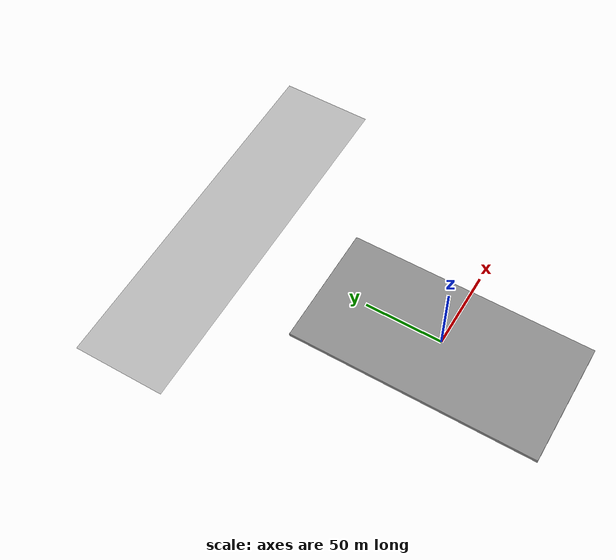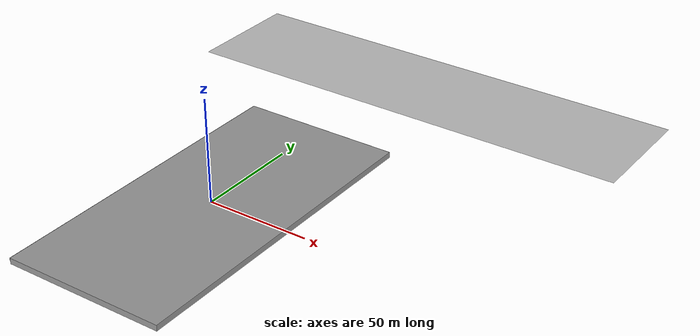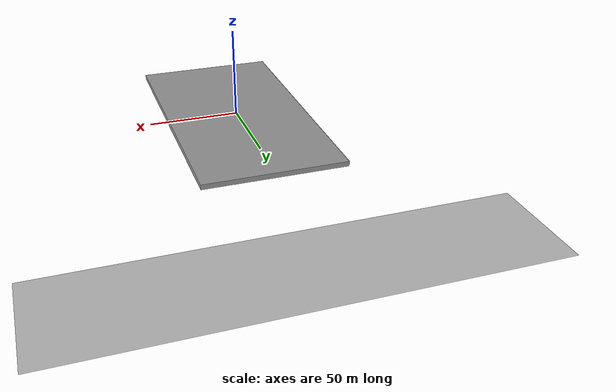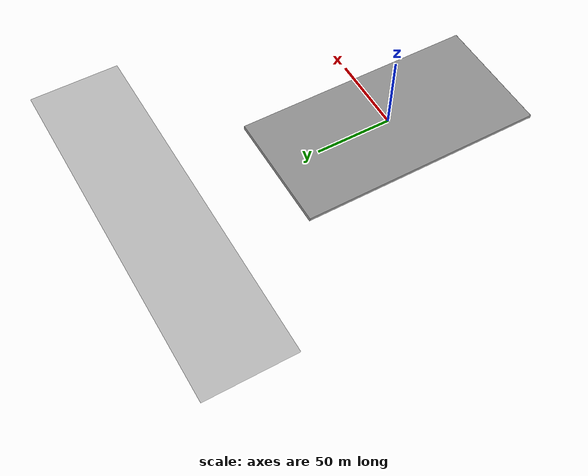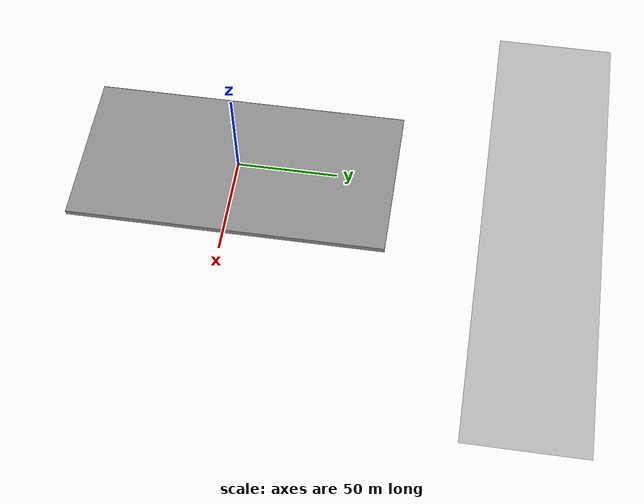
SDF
<sdf version="1.6">
 <world name="yacht">
  <light name="sun" type="directional">
   <pose>0 0 10 0 -0 0</pose>
   <diffuse>0.8 0.8 0.8 1</diffuse>
   <specular>0.1 0.1 0.1 1</specular>
   <attenuation>
    <range>1000</range>
    <constant>0.9</constant>
    <linear>0.01</linear>
    <quadratic>0.001</quadratic>
   </attenuation>
   <direction>-0.5 0.5 -1</direction>
  </light>
  <model name="yacht_scene">
   <static>1</static>
   <link name="link">
    <collision name="scene">
     <geometry><mesh><uri>model://yacht_scene/yacht-collision.dae</uri><scale>1 1 1</scale></mesh></geometry>
    </collision>
    <visual name="scene">
     <cast_shadows>0</cast_shadows>
     <geometry><mesh><uri>model://yacht_scene/yacht.dae</uri><scale>1 1 1</scale></mesh></geometry>
    </visual>
   </link>
  </model>
  <plugin name="underwater_world" filename="libuuv_underwater_world_ros_plugin.so">
   <namespace>hydrodynamics</namespace>
   <constant_current>
    <topic>current_velocity</topic>
    <velocity><mean>0</mean><min>-5</min><max>5</max><mu>0.0</mu><noiseAmp>0.0</noiseAmp></velocity>
    <direction>
     <mean>0</mean>
     <min>-1.5707963267948966</min>
     <max>1.5707963267948966</max>
     <mu>0.0</mu>
     <noiseAmp>0.0</noiseAmp>
    </direction>
   </constant_current>
  </plugin>
  <gravity>0 0 -9.8</gravity>
  <magnetic_field>6e-06 2.3e-05 -4.2e-05</magnetic_field>
  <atmosphere type="adiabatic"/>
  <physics name="default_physics" default="0" type="ode">
   <max_step_size>0.001</max_step_size>
   <real_time_factor>1</real_time_factor>
   <real_time_update_rate>1000</real_time_update_rate>
  </physics>
  <scene><ambient>0.4 0.4 0.4 1</ambient><background>0.7 0.7 0.7 1</background><shadows>1</shadows></scene>
  <spherical_coordinates>
   <surface_model>EARTH_WGS84</surface_model>
   <latitude_deg>0</latitude_deg>
   <longitude_deg>0</longitude_deg>
   <elevation>0</elevation>
   <heading_deg>0</heading_deg>
  </spherical_coordinates>
  <model name="yacht_ocean">
   <link name="link">
    <inertial>
     <mass>1</mass>
     <inertia><ixx>1</ixx><ixy>0</ixy><ixz>0</ixz><iyy>1</iyy><iyz>0</iyz><izz>1</izz></inertia>
    </inertial>
    <visual name="surface">
     <cast_shadows>0</cast_shadows>
     <geometry><box><size>79.1 158.2 0.001</size></box></geometry>
     <material>
      <script>
       <uri>model://yacht_ocean/materials/scripts</uri>
       <uri>model://yacht_ocean/materials/textures</uri>
       <name>UUV/Water</name>
      </script>
      <ambient>0.5 0.5 0.5 0.8</ambient>
      <diffuse>0.5 0.5 0.5 0.8</diffuse>
      <specular>0 0 0 1</specular>
      <emissive>0 0 0 1</emissive>
      <shader type="vertex"><normal_map>__default__</normal_map></shader>
     </material>
     <transparency>0.2</transparency>
    </visual>
    <visual name="north">
     <cast_shadows>0</cast_shadows>
     <pose>39.5 0 -1.4 0 -0 0</pose>
     <geometry><box><size>0.1 158.2 2.8</size></box></geometry>
     <material>
      <script>
       <uri>model://yacht_ocean/materials/scripts</uri>
       <uri>model://yacht_ocean/materials/textures</uri>
       <name>UUV/Water</name>
      </script>
      <ambient>0.5 0.5 0.5 0.8</ambient>
      <diffuse>0.5 0.5 0.5 0.8</diffuse>
      <specular>0 0 0 1</specular>
      <emissive>0 0 0 1</emissive>
      <shader type="vertex"><normal_map>__default__</normal_map></shader>
     </material>
     <transparency>0.2</transparency>
    </visual>
    <visual name="south">
     <cast_shadows>0</cast_shadows>
     <pose>-39.7 0 -0.95 0 -0 0</pose>
     <geometry><box><size>0.1 158.2 1.9</size></box></geometry>
     <material>
      <script>
       <uri>model://yacht_ocean/materials/scripts</uri>
       <uri>model://yacht_ocean/materials/textures</uri>
       <name>UUV/Water</name>
      </script>
      <ambient>0.5 0.5 0.5 0.8</ambient>
      <diffuse>0.5 0.5 0.5 0.8</diffuse>
      <specular>0 0 0 1</specular>
      <emissive>0 0 0 1</emissive>
      <shader type="vertex"><normal_map>__default__</normal_map></shader>
     </material>
     <transparency>0.2</transparency>
    </visual>
    <visual name="east">
     <cast_shadows>0</cast_shadows>
     <pose>0 -79.1 -1.4 0 -0 0</pose>
     <geometry><box><size>79.1 0.1 2.8</size></box></geometry>
     <material>
      <script>
       <uri>model://yacht_ocean/materials/scripts</uri>
       <uri>model://yacht_ocean/materials/textures</uri>
       <name>UUV/Water</name>
      </script>
      <ambient>0.5 0.5 0.5 0.8</ambient>
      <diffuse>0.5 0.5 0.5 0.8</diffuse>
      <specular>0 0 0 1</specular>
      <emissive>0 0 0 1</emissive>
      <shader type="vertex"><normal_map>__default__</normal_map></shader>
     </material>
     <transparency>0.2</transparency>
    </visual>
    <visual name="west">
     <cast_shadows>0</cast_shadows>
     <pose>0 79.1 -1.4 0 -0 0</pose>
     <geometry><box><size>79.1 0.1 2.8</size></box></geometry>
     <material>
      <script>
       <uri>model://yacht_ocean/materials/scripts</uri>
       <uri>model://yacht_ocean/materials/textures</uri>
       <name>UUV/Water</name>
      </script>
      <ambient>0.5 0.5 0.5 0.8</ambient>
      <diffuse>0.5 0.5 0.5 0.8</diffuse>
      <specular>0 0 0 1</specular>
      <emissive>0 0 0 1</emissive>
      <shader type="vertex"><normal_map>__default__</normal_map></shader>
     </material>
     <transparency>0.2</transparency>
    </visual>
   </link>
   <static>1</static>
  </model>
 </world>
</sdf>
